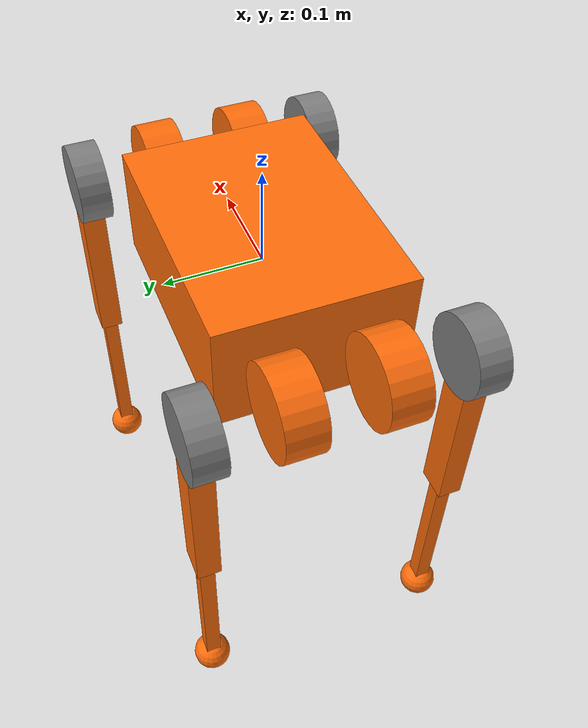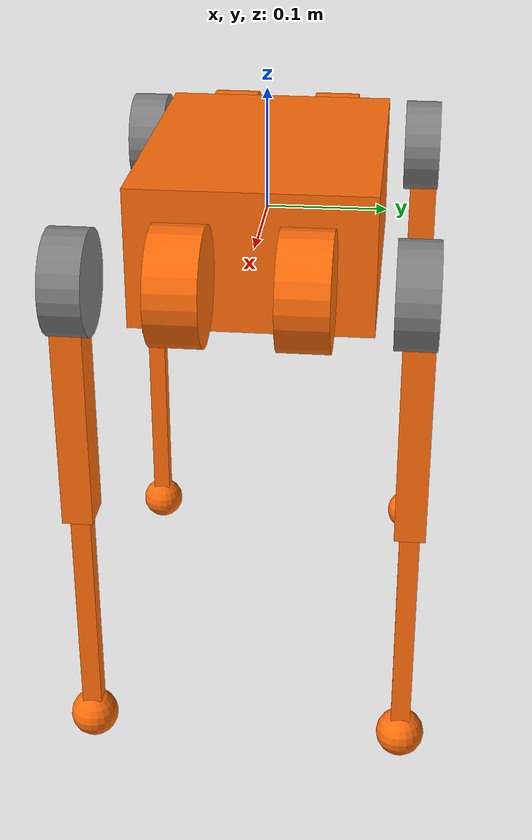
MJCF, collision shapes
<mujoco model="a1">
  <compiler angle="radian" meshdir="../meshes/"/>
  <asset>
    <mesh name="trunk" file="trunk.stl"/>
    <mesh name="hip" file="hip.stl"/>
    <mesh name="thigh_mirror" file="thigh_mirror.stl"/>
    <mesh name="calf" file="calf.stl"/>
    <mesh name="thigh" file="thigh.stl"/>
  </asset>
  <worldbody>
    <geom size="0.0005 0.0005 0.0005" type="box" contype="0" conaffinity="0" group="1" density="0"/>
    <geom type="mesh" contype="0" conaffinity="0" group="1" density="0" rgba="1 0.423529 0.0392157 1" mesh="trunk"/>
    <geom size="0.1335 0.097 0.057" type="box" rgba="1 0.423529 0.0392157 1"/>
    <geom size="0.0005 0.0005 0.0005" type="box" contype="0" conaffinity="0" group="1" density="0" rgba="0.8 0 0 1"/>
    <geom size="0.0005 0.0005 0.0005" type="box" rgba="0.8 0 0 1"/>
    <body name="FR_hip" pos="0.1805 -0.047 0">
      <inertial pos="-0.00266413 -0.0163358 2.49436e-05" quat="0.475134 0.521822 -0.477036 0.523818" mass="0.864993" diaginertia="0.00151807 0.00143717 0.000946744"/>
      <joint name="FR_hip_joint" pos="0 0 0" axis="1 0 0" range="-0.802851 0.802851" damping="0.01" frictionloss="0.2"/>
      <geom quat="0 1 0 0" type="mesh" contype="0" conaffinity="0" group="1" density="0" rgba="1 0.423529 0.0392157 1" mesh="hip"/>
      <geom size="0.046 0.02" quat="0.707107 0.707107 0 0" type="cylinder" rgba="1 0.423529 0.0392157 1"/>
      <geom size="0.041 0.016" pos="0 -0.081 0" quat="0.707107 0.707107 0 0" type="cylinder"/>
      <body name="FR_thigh" pos="0 -0.0838 0">
        <inertial pos="-0.003237 0.022327 -0.027326" quat="0.999125 -0.00256393 -0.0409531 -0.00806091" mass="1.013" diaginertia="0.00555739 0.00513936 0.00133944"/>
        <joint name="FR_thigh_joint" pos="0 0 0" axis="0 1 0" range="-1.0472 4.18879" damping="0.01" frictionloss="0.2"/>
        <geom type="mesh" contype="0" conaffinity="0" group="1" density="0" rgba="1 0.423529 0.0392157 1" mesh="thigh_mirror"/>
        <geom size="0.1 0.01225 0.017" pos="0 0 -0.1" quat="0.707107 0 0.707107 0" type="box" rgba="1 0.423529 0.0392157 1"/>
        <body name="FR_calf" pos="0 0 -0.2">
          <inertial pos="0.00472659 0 -0.131975" quat="0.706886 0.017653 0.017653 0.706886" mass="0.226" diaginertia="0.00340344 0.00339393 3.54834e-05"/>
          <joint name="FR_calf_joint" pos="0 0 0" axis="0 1 0" range="-2.69653 -0.916298" damping="0.01" frictionloss="0.2"/>
          <geom type="mesh" contype="0" conaffinity="0" group="1" density="0" rgba="1 0.423529 0.0392157 1" mesh="calf"/>
          <geom size="0.1 0.008 0.008" pos="0 0 -0.1" quat="0.707107 0 0.707107 0" type="box" rgba="1 0.423529 0.0392157 1"/>
          <geom size="0.01" pos="0 0 -0.2" contype="0" conaffinity="0" group="1" density="0" rgba="1 0.423529 0.0392157 1"/>
          <geom size="0.02" pos="0 0 -0.2" rgba="1 0.423529 0.0392157 1"/>
        </body>
      </body>
    </body>
    <body name="FL_hip" pos="0.1805 0.047 0">
      <inertial pos="-0.00266413 0.0163358 2.49436e-05" quat="0.521822 0.475134 -0.523818 0.477036" mass="0.864993" diaginertia="0.00151807 0.00143717 0.000946744"/>
      <joint name="FL_hip_joint" pos="0 0 0" axis="1 0 0" range="-0.802851 0.802851" damping="0.01" frictionloss="0.2"/>
      <geom type="mesh" contype="0" conaffinity="0" group="1" density="0" rgba="1 0.423529 0.0392157 1" mesh="hip"/>
      <geom size="0.046 0.02" quat="0.707107 0.707107 0 0" type="cylinder" rgba="1 0.423529 0.0392157 1"/>
      <geom size="0.041 0.016" pos="0 0.081 0" quat="0.707107 0.707107 0 0" type="cylinder"/>
      <body name="FL_thigh" pos="0 0.0838 0">
        <inertial pos="-0.003237 -0.022327 -0.027326" quat="0.999125 0.00256393 -0.0409531 0.00806091" mass="1.013" diaginertia="0.00555739 0.00513936 0.00133944"/>
        <joint name="FL_thigh_joint" pos="0 0 0" axis="0 1 0" range="-1.0472 4.18879" damping="0.01" frictionloss="0.2"/>
        <geom type="mesh" contype="0" conaffinity="0" group="1" density="0" rgba="1 0.423529 0.0392157 1" mesh="thigh"/>
        <geom size="0.1 0.01225 0.017" pos="0 0 -0.1" quat="0.707107 0 0.707107 0" type="box" rgba="1 0.423529 0.0392157 1"/>
        <body name="FL_calf" pos="0 0 -0.2">
          <inertial pos="0.00472659 0 -0.131975" quat="0.706886 0.017653 0.017653 0.706886" mass="0.226" diaginertia="0.00340344 0.00339393 3.54834e-05"/>
          <joint name="FL_calf_joint" pos="0 0 0" axis="0 1 0" range="-2.69653 -0.916298" damping="0.01" frictionloss="0.2"/>
          <geom type="mesh" contype="0" conaffinity="0" group="1" density="0" rgba="1 0.423529 0.0392157 1" mesh="calf"/>
          <geom size="0.1 0.008 0.008" pos="0 0 -0.1" quat="0.707107 0 0.707107 0" type="box" rgba="1 0.423529 0.0392157 1"/>
          <geom size="0.01" pos="0 0 -0.2" contype="0" conaffinity="0" group="1" density="0" rgba="1 0.423529 0.0392157 1"/>
          <geom size="0.02" pos="0 0 -0.2" rgba="1 0.423529 0.0392157 1"/>
        </body>
      </body>
    </body>
    <body name="RR_hip" pos="-0.1805 -0.047 0">
      <inertial pos="0.00266413 -0.0163358 2.49436e-05" quat="0.523818 0.477036 -0.521822 0.475134" mass="0.864993" diaginertia="0.00151807 0.00143717 0.000946744"/>
      <joint name="RR_hip_joint" pos="0 0 0" axis="1 0 0" range="-0.802851 0.802851" damping="0.01" frictionloss="0.2"/>
      <geom quat="0 0 0 -1" type="mesh" contype="0" conaffinity="0" group="1" density="0" rgba="1 0.423529 0.0392157 1" mesh="hip"/>
      <geom size="0.046 0.02" quat="0.707107 0.707107 0 0" type="cylinder" rgba="1 0.423529 0.0392157 1"/>
      <geom size="0.041 0.016" pos="0 -0.081 0" quat="0.707107 0.707107 0 0" type="cylinder"/>
      <body name="RR_thigh" pos="0 -0.0838 0">
        <inertial pos="-0.003237 0.022327 -0.027326" quat="0.999125 -0.00256393 -0.0409531 -0.00806091" mass="1.013" diaginertia="0.00555739 0.00513936 0.00133944"/>
        <joint name="RR_thigh_joint" pos="0 0 0" axis="0 1 0" range="-1.0472 4.18879" damping="0.01" frictionloss="0.2"/>
        <geom type="mesh" contype="0" conaffinity="0" group="1" density="0" rgba="1 0.423529 0.0392157 1" mesh="thigh_mirror"/>
        <geom size="0.1 0.01225 0.017" pos="0 0 -0.1" quat="0.707107 0 0.707107 0" type="box" rgba="1 0.423529 0.0392157 1"/>
        <body name="RR_calf" pos="0 0 -0.2">
          <inertial pos="0.00472659 0 -0.131975" quat="0.706886 0.017653 0.017653 0.706886" mass="0.226" diaginertia="0.00340344 0.00339393 3.54834e-05"/>
          <joint name="RR_calf_joint" pos="0 0 0" axis="0 1 0" range="-2.69653 -0.916298" damping="0.01" frictionloss="0.2"/>
          <geom type="mesh" contype="0" conaffinity="0" group="1" density="0" rgba="1 0.423529 0.0392157 1" mesh="calf"/>
          <geom size="0.1 0.008 0.008" pos="0 0 -0.1" quat="0.707107 0 0.707107 0" type="box" rgba="1 0.423529 0.0392157 1"/>
          <geom size="0.01" pos="0 0 -0.2" contype="0" conaffinity="0" group="1" density="0" rgba="1 0.423529 0.0392157 1"/>
          <geom size="0.02" pos="0 0 -0.2" rgba="1 0.423529 0.0392157 1"/>
        </body>
      </body>
    </body>
    <body name="RL_hip" pos="-0.1805 0.047 0">
      <inertial pos="0.00266413 0.0163358 2.49436e-05" quat="0.477036 0.523818 -0.475134 0.521822" mass="0.864993" diaginertia="0.00151807 0.00143717 0.000946744"/>
      <joint name="RL_hip_joint" pos="0 0 0" axis="1 0 0" range="-0.802851 0.802851" damping="0.01" frictionloss="0.2"/>
      <geom quat="0 0 1 0" type="mesh" contype="0" conaffinity="0" group="1" density="0" rgba="1 0.423529 0.0392157 1" mesh="hip"/>
      <geom size="0.046 0.02" quat="0.707107 0.707107 0 0" type="cylinder" rgba="1 0.423529 0.0392157 1"/>
      <geom size="0.041 0.016" pos="0 0.081 0" quat="0.707107 0.707107 0 0" type="cylinder"/>
      <body name="RL_thigh" pos="0 0.0838 0">
        <inertial pos="-0.003237 -0.022327 -0.027326" quat="0.999125 0.00256393 -0.0409531 0.00806091" mass="1.013" diaginertia="0.00555739 0.00513936 0.00133944"/>
        <joint name="RL_thigh_joint" pos="0 0 0" axis="0 1 0" range="-1.0472 4.18879" damping="0.01" frictionloss="0.2"/>
        <geom type="mesh" contype="0" conaffinity="0" group="1" density="0" rgba="1 0.423529 0.0392157 1" mesh="thigh"/>
        <geom size="0.1 0.01225 0.017" pos="0 0 -0.1" quat="0.707107 0 0.707107 0" type="box" rgba="1 0.423529 0.0392157 1"/>
        <body name="RL_calf" pos="0 0 -0.2">
          <inertial pos="0.00472659 0 -0.131975" quat="0.706886 0.017653 0.017653 0.706886" mass="0.226" diaginertia="0.00340344 0.00339393 3.54834e-05"/>
          <joint name="RL_calf_joint" pos="0 0 0" axis="0 1 0" range="-2.69653 -0.916298" damping="0.01" frictionloss="0.2"/>
          <geom type="mesh" contype="0" conaffinity="0" group="1" density="0" rgba="1 0.423529 0.0392157 1" mesh="calf"/>
          <geom size="0.1 0.008 0.008" pos="0 0 -0.1" quat="0.707107 0 0.707107 0" type="box" rgba="1 0.423529 0.0392157 1"/>
          <geom size="0.01" pos="0 0 -0.2" contype="0" conaffinity="0" group="1" density="0" rgba="1 0.423529 0.0392157 1"/>
          <geom size="0.02" pos="0 0 -0.2" rgba="1 0.423529 0.0392157 1"/>
        </body>
      </body>
    </body>
  </worldbody>
</mujoco>
